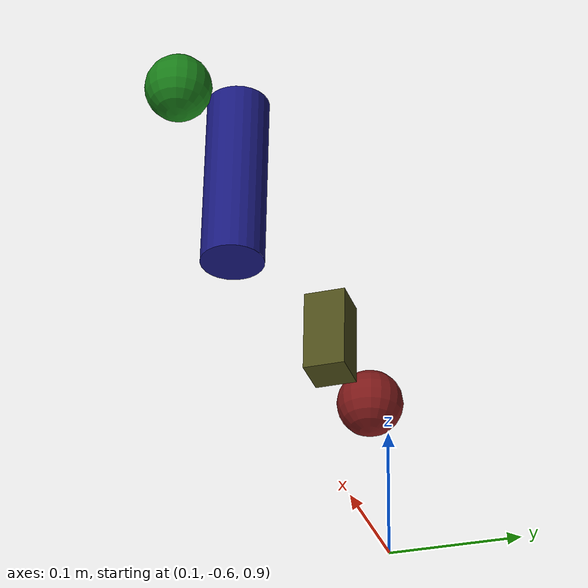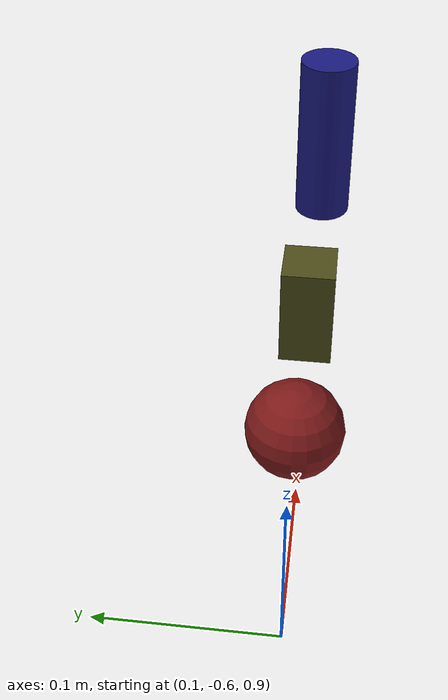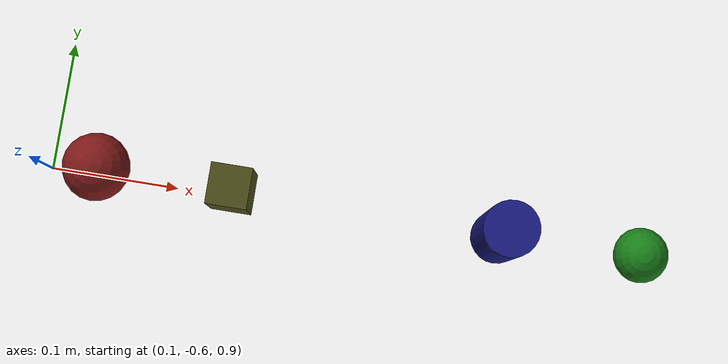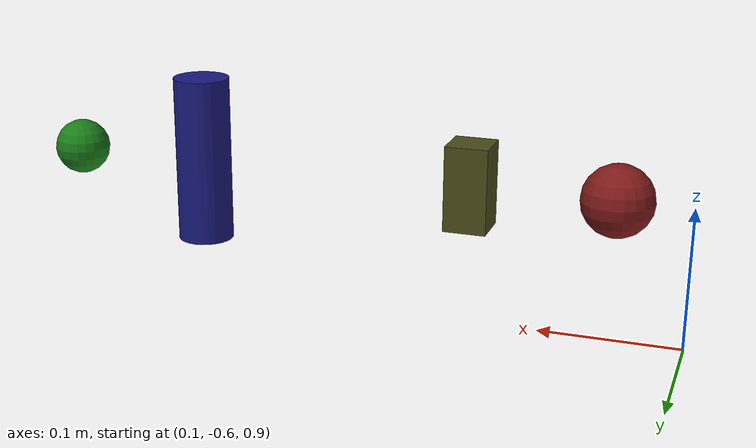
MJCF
<mujoco model="SO101 objects">

  <asset>
    <material name="obj_red" rgba="0.5 0.1 0.1 1"/>
    <material name="obj_green" rgba="0.1 0.5 0.1 1"/>
    <material name="obj_blue" rgba="0.1 0.1 0.5 1"/>
    <material name="obj_yellow" rgba="0.3 0.3 0.1 1"/>
  </asset>

  <worldbody>
    <!-- Manipulable objects for SO101 single arm -->
    <body name="sphere1" pos="0.55 -0.6 1">
      <freejoint/>
      <geom type="sphere" size="0.02" material="obj_green" mass="0.04"
            contype="1" conaffinity="1" friction="1.2 0.05 0.01" condim="4"/>
    </body>

    <body name="cylinder1" pos="0.45 -0.6 1">
      <freejoint/>
      <geom type="cylinder" size="0.02 0.06" material="obj_blue" mass="0.04"
            contype="1" conaffinity="1" friction="1.2 0.05 0.01" condim="4"/>
    </body>

    <body name="box2" pos="0.25 -0.6 1">
      <freejoint/>
      <geom type="box" size="0.015 0.015 0.03" material="obj_yellow" mass="0.04"
            contype="1" conaffinity="1" friction="1.2 0.05 0.01" condim="4"/>
    </body>

    <body name="sphere2" pos="0.15 -0.6 1">
      <freejoint/>
      <geom type="sphere" size="0.025" material="obj_red" mass="0.04"
            contype="1" conaffinity="1" friction="1.2 0.05 0.01" condim="4"/>
    </body>
  </worldbody>

</mujoco>
